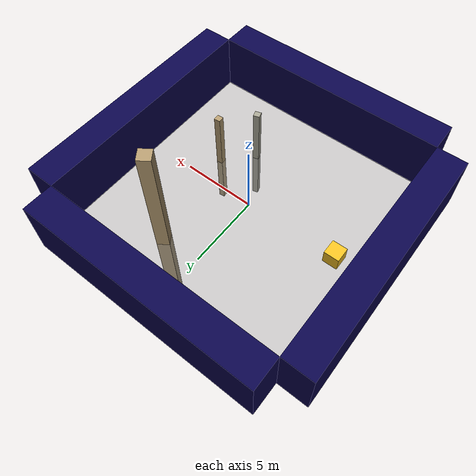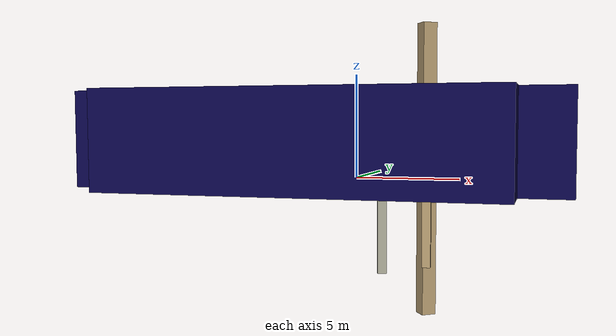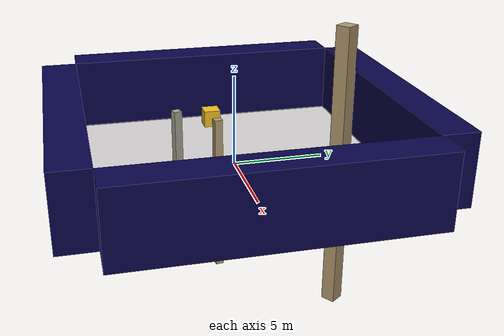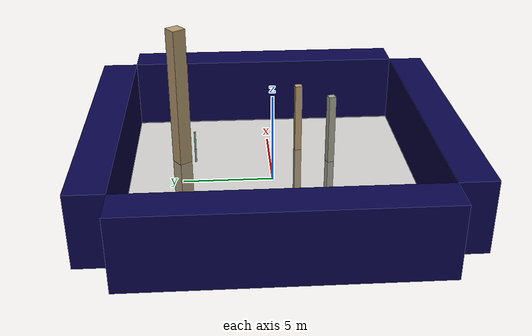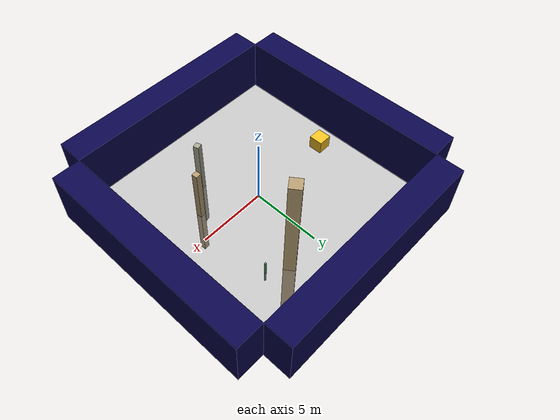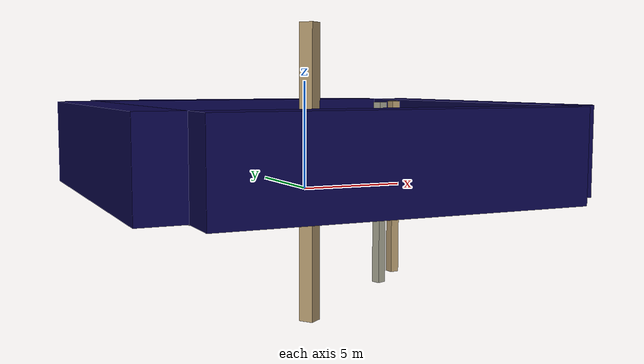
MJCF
<mujoco model="unnamed_model">
  <default>
    <default class="/" />
    <default class="border/" />
    <default class="border_1/" />
    <default class="border_2/" />
    <default class="border_3/" />
    <default class="light/" />
    <default class="agent/" />
    <default class="apple0/" />
    <default class="apple1/" />
    <default class="stone/" />
    <default class="stone_1/" />
  </default>
  <worldbody>
    <body name="border/">
      <body name="border/border" pos="0 9 2">
        <geom name="border/border_geom" class="border/" type="box" size="8.0 1.0 2.0" rgba="0.035 0.016 0.29 1.0" />
      </body>
    </body>
    <body name="border_1/">
      <body name="border_1/border" pos="0 -9 2">
        <geom name="border_1/border_geom" class="border_1/" type="box" size="8.0 1.0 2.0" rgba="0.035 0.016 0.29 1.0" />
      </body>
    </body>
    <body name="border_2/">
      <body name="border_2/border" pos="9 0 2">
        <geom name="border_2/border_geom" class="border_2/" type="box" size="1.0 8.0 2.0" rgba="0.035 0.016 0.29 1.0" />
      </body>
    </body>
    <body name="border_3/">
      <body name="border_3/border" pos="-9 0 2">
        <geom name="border_3/border_geom" class="border_3/" type="box" size="1.0 8.0 2.0" rgba="0.035 0.016 0.29 1.0" />
      </body>
    </body>
    <body name="light/">
      <body name="light/light" pos="0 0 15">
        <geom name="light/light_geom" class="light/" size="0.5" rgba="1.0 1.0 1.0 0.0" />
        <light name="light//unnamed_light_0" class="light/" />
      </body>
    </body>
    <body euler="0 0 270.43233115155459" name="agent/" pos="-6.4000000000000004 0 0.5">
      <joint name="agent/boxagent_freeJoint/" class="/" type="free" />
      <body name="agent/agent" pos="0 0 0" euler="0 0 0">
        <geom name="agent/boxagent_geom" class="agent/" type="box" size="0.5 0.5 0.5" rgba="0.949 0.7451 0.1333 1.0" euler="0 0 0" />
        <camera name="agent/boxagent_camera" class="agent/" fovy="90" pos="0 0 0.25" euler="-90 180 0" />
      </body>
    </body>
    <body name="apple0/">
      <body name="apple0/apple0" pos="2.05505 -3.4892000000000003 0.10000000000000001" euler="0 0 -73.086219895282085">
        <geom name="apple0/apple_geom" class="apple0/" type="box" size="0.2 0.2 4.0" rgba="0.6470588235294118 0.6392156862745098 0.5686274509803921 1.0" />
      </body>
    </body>
    <body name="apple1/">
      <body name="apple1/apple1" pos="2.5762999999999998 5.164200000000001 0.10000000000000001" euler="0 0 35.385324343937953">
        <geom name="apple1/apple_geom" class="apple1/" type="box" size="0.4 0.4 8.0" rgba="0.6980392156862745 0.6 0.43137254901960786 1.0" />
      </body>
    </body>
    <body name="stone/">
      <body name="stone/stone" pos="4.0613000000000001 4.4428000000000001 0.10000000000000001" euler="0 0 91.43928988449062">
        <geom name="stone/stone_geom" class="stone/" type="box" size="0.05 0.05 1.0" rgba="0.396078431372549 0.6705882352941176 0.48627450980392156 1.0" />
      </body>
    </body>
    <body name="stone_1/">
      <body name="stone_1/stone" pos="3.7329499999999998 -1.7491000000000003 0.10000000000000001" euler="0 0 -84.104090130822783">
        <geom name="stone_1/stone_geom" class="stone_1/" type="box" size="0.2 0.2 4.0" rgba="0.6980392156862745 0.6 0.43137254901960786 1.0" />
      </body>
    </body>
    <geom name="base_plane" class="/" type="plane" size="8 8 0.10000000000000001" />
  </worldbody>
</mujoco>
